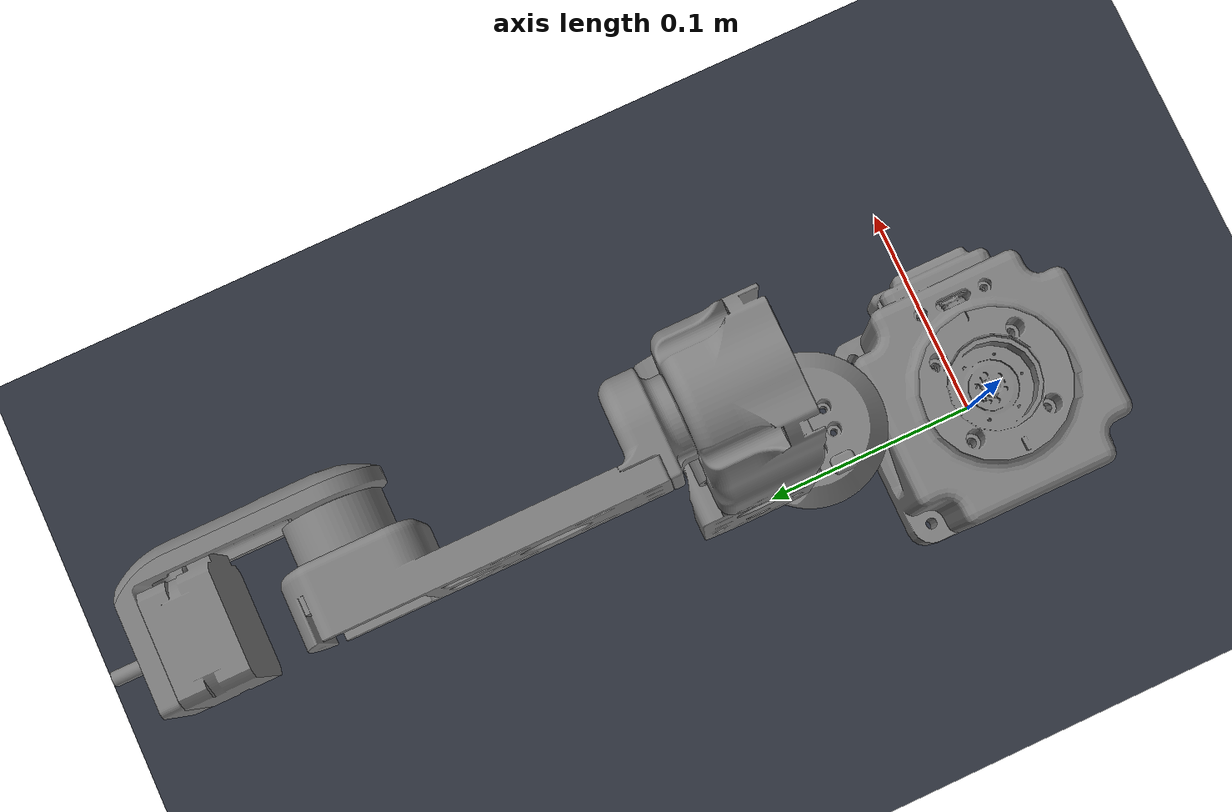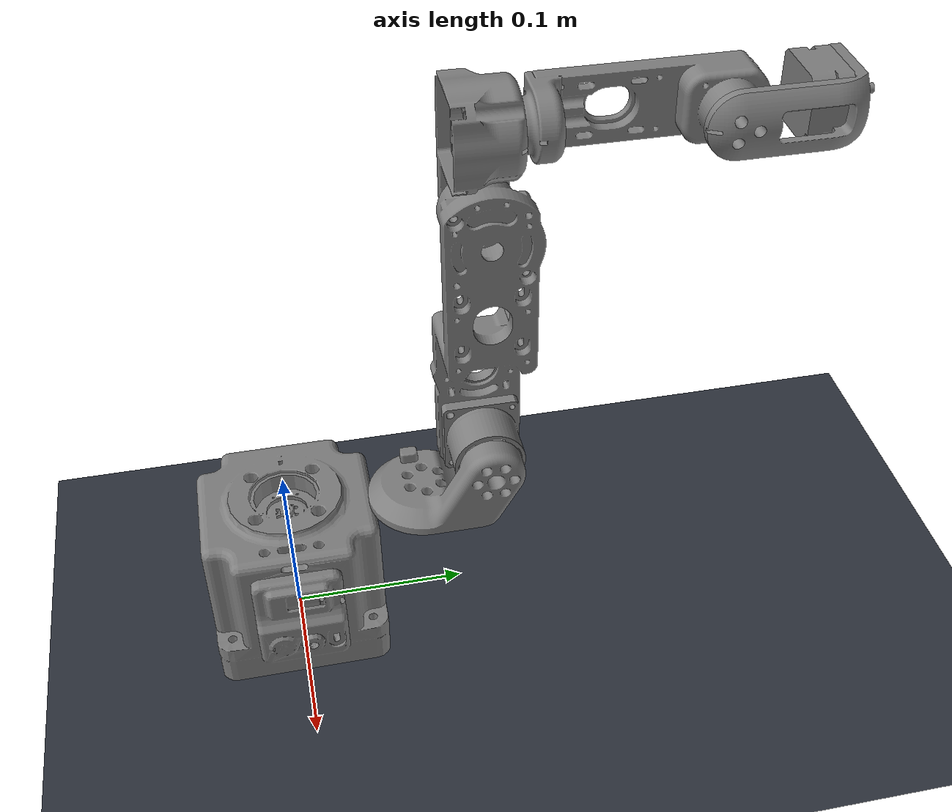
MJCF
<?xml version='1.0' encoding='utf-8'?>
<mujoco model="Dummy_auk_REFERENCE_NOT_CALIBRATED">
  <compiler angle="radian" boundinertia="1e-06" meshdir="meshes" autolimits="true" />
  <asset>
    <mesh name="base_link" content_type="model/stl" file="base_link.stl" scale="0.001 0.001 0.001" />
    <mesh name="link1_1_1" content_type="model/stl" file="link1_1_1.stl" scale="0.001 0.001 0.001" />
    <mesh name="link2_1_1" content_type="model/stl" file="link2_1_1.stl" scale="0.001 0.001 0.001" />
    <mesh name="link3_1_1" content_type="model/stl" file="link3_1_1.stl" scale="0.001 0.001 0.001" />
    <mesh name="link4_1_1" content_type="model/stl" file="link4_1_1.stl" scale="0.001 0.001 0.001" />
    <mesh name="link5_1_1" content_type="model/stl" file="link5_1_1.stl" scale="0.001 0.001 0.001" />
    <mesh name="link6_1_1" content_type="model/stl" file="link6_1_1.stl" scale="0.001 0.001 0.001" />
  </asset>
  <worldbody>
    <body name="base_link" quat="0 -5.10341e-12 -5.10341e-12 -1" gravcomp="1">
      <inertial pos="-0.0192864 0.000581749 0.0554629" quat="-0.225074 0.672473 -0.0750361 0.701065" mass="3.40542" diaginertia="0.00679912 0.00636827 0.0063166" />
      <geom type="mesh" contype="0" conaffinity="0" group="1" density="0" mesh="base_link" />
      <geom type="mesh" mesh="base_link" contype="0" conaffinity="0" rgba="0.25 0.52 0.65 1" />
      <body name="link1_1_1" pos="-0.019225 -0.000523 0.100684" gravcomp="1">
        <inertial pos="-0.00574474 0.00546433 0.0120456" quat="0.229177 0.707106 -0.375567 0.553559" mass="0.400012" diaginertia="0.000265299 0.000221443 9.02581e-05" />
        <joint name="Joint1" range="-3.14 3.14" actuatorfrcrange="-150 150" axis="0 0 -1" damping="0.3" armature="0.02" />
        <geom pos="0.019225 0.000523 -0.100684" quat="1 0 0 0" type="mesh" contype="0" conaffinity="0" group="1" density="0" mesh="link1_1_1" />
        <geom pos="0.019225 0.000523 -0.100684" quat="1 0 0 0" type="mesh" mesh="link1_1_1" contype="0" conaffinity="0" rgba="0.25 0.52 0.65 1" />
        <body name="link2_1_1" pos="-0.0155 0.035 0.0285" gravcomp="1">
          <inertial pos="0.0224763 0.00158367 0.0701479" quat="0.553384 -0.0330244 -0.0244233 0.831913" mass="0.964419" diaginertia="0.00385278 0.00382781 0.000477409" />
          <joint name="Joint2" range="-3.14 3.14" actuatorfrcrange="-150 150" axis="-1 0 0" damping="0.3" armature="0.02" />
          <geom pos="0.034725 -0.034477 -0.129184" quat="1 0 0 0" type="mesh" contype="0" conaffinity="0" group="1" density="0" mesh="link2_1_1" />
          <geom pos="0.034725 -0.034477 -0.129184" quat="1 0 0 0" type="mesh" mesh="link2_1_1" contype="0" conaffinity="0" rgba="0.25 0.52 0.65 1" />
          <body name="link3_1_1" pos="0.03665 0 0.146" gravcomp="1">
            <inertial pos="-0.0107303 -0.0223691 0.0364676" quat="0.660228 -0.0213283 -0.201254 0.723285" mass="0.381723" diaginertia="0.000390745 0.000349731 0.000106524" />
            <joint name="Joint3" range="-3.14 3.14" actuatorfrcrange="-150 150" axis="-1 0 0" damping="0.3" armature="0.02" />
            <geom pos="-0.001925 -0.034477 -0.275184" quat="1 0 0 0" type="mesh" contype="0" conaffinity="0" group="1" density="0" mesh="link3_1_1" />
            <geom pos="-0.001925 -0.034477 -0.275184" quat="1 0 0 0" type="mesh" mesh="link3_1_1" contype="0" conaffinity="0" rgba="0.25 0.52 0.65 1" />
            <body name="link4_1_1" pos="-0.01855 -0.01 0.052" gravcomp="1">
              <inertial pos="-0.00422131 0.0902137 0.000268283" quat="0.706746 0.707004 -0.0254825 0.00248836" mass="0.4437" diaginertia="0.00110508 0.00107896 0.000119958" />
              <joint name="Joint4" range="-3.14 3.14" actuatorfrcrange="-150 150" axis="0 -1 0" damping="0.3" armature="0.02" />
              <geom pos="0.016625 -0.024477 -0.327184" quat="1 0 0 0" type="mesh" contype="0" conaffinity="0" group="1" density="0" mesh="link4_1_1" />
              <geom pos="0.016625 -0.024477 -0.327184" quat="1 0 0 0" type="mesh" mesh="link4_1_1" contype="0" conaffinity="0" rgba="0.25 0.52 0.65 1" />
              <body name="link5_1_1" pos="0.0168 0.127 0" gravcomp="1">
                <inertial pos="-0.000704496 0.0418159 1.98565e-05" quat="0.435418 0.557145 -0.435418 0.557145" mass="0.132942" diaginertia="0.000161 0.000156471 2.85293e-05" />
                <joint name="Joint5" range="-3.14 3.14" actuatorfrcrange="-150 150" axis="-1 0 0" damping="0.3" armature="0.02" />
                <geom pos="-0.000175 -0.151477 -0.327184" quat="1 0 0 0" type="mesh" contype="0" conaffinity="0" group="1" density="0" mesh="link5_1_1" />
                <geom pos="-0.000175 -0.151477 -0.327184" quat="1 0 0 0" type="mesh" mesh="link5_1_1" contype="0" conaffinity="0" rgba="0.25 0.52 0.65 1" />
                <body name="link6_1_1" pos="-0.018506 0.077 -0.000106" gravcomp="1">
                  <inertial pos="8.86655e-08 0.00150048 2.70146e-07" quat="0.707107 0 0 0.707107" mass="0.00918018" diaginertia="2e-06 1e-06 1e-06" />
                  <joint name="Joint6" range="-3.14 3.14" actuatorfrcrange="-150 150" axis="0 -1 0" damping="0.3" armature="0.02" />
                  <geom pos="0.018331 -0.228477 -0.327078" quat="1 0 0 0" type="mesh" contype="0" conaffinity="0" group="1" density="0" mesh="link6_1_1" />
                  <geom pos="0.018331 -0.228477 -0.327078" quat="1 0 0 0" type="mesh" mesh="link6_1_1" contype="0" conaffinity="0" rgba="0.25 0.52 0.65 1" />
                </body>
              </body>
            </body>
          </body>
        </body>
      </body>
    </body>
    <light pos="0 -1 2" dir="0 0 -1" />
    <geom name="floor" type="plane" size="1 1 0.01" pos="0 0 -0.01" rgba="0.18 0.20 0.24 1" contype="0" conaffinity="0" />
  </worldbody>
  <option timestep="0.002" integrator="implicitfast" />
  <actuator>
    <position name="servo1" joint="Joint1" kp="35" kv="4" ctrlrange="-0.7 0.7" forcerange="-5 5" />
    <position name="servo2" joint="Joint2" kp="35" kv="4" ctrlrange="-0.7 0.7" forcerange="-5 5" />
    <position name="servo3" joint="Joint3" kp="35" kv="4" ctrlrange="-0.7 0.7" forcerange="-5 5" />
    <position name="servo4" joint="Joint4" kp="35" kv="4" ctrlrange="-0.7 0.7" forcerange="-5 5" />
    <position name="servo5" joint="Joint5" kp="35" kv="4" ctrlrange="-0.7 0.7" forcerange="-5 5" />
    <position name="servo6" joint="Joint6" kp="35" kv="4" ctrlrange="-0.7 0.7" forcerange="-5 5" />
  </actuator>
  <visual>
    <global offwidth="960" offheight="720" />
  </visual>
</mujoco>
